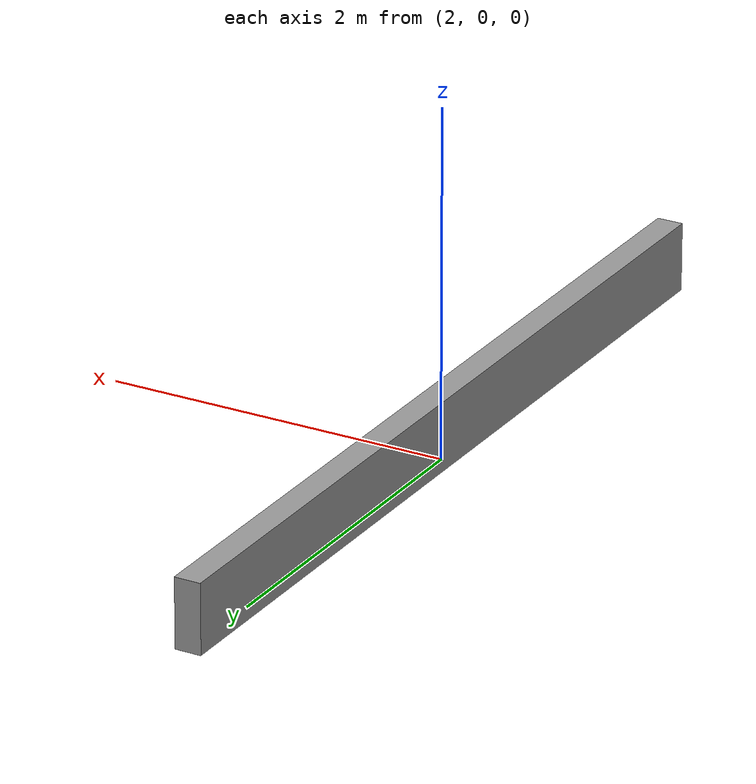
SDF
<?xml version='1.0'?>
<sdf version='1.6'>
  <model name='Untitled'>
    <pose frame=''>2 0 0 0 -0 0</pose>
    <link name='Wall_0'>
      <collision name='Wall_0_Collision'>
        <geometry>
          <box>
            <size>5.15 0.15 0.4</size>
          </box>
        </geometry>
        <pose frame=''>0 0 0.2 0 -0 0</pose>
      </collision>
      <visual name='Wall_0_Visual'>
        <pose frame=''>0 0 0.2 0 -0 0</pose>
        <geometry>
          <box>
            <size>5.15 0.15 0.4</size>
          </box>
        </geometry>
        <material>
          <script>
            <uri>file://media/materials/scripts/gazebo.material</uri>
            <name>Gazebo/Grey</name>
          </script>
          <ambient>1 1 1 1</ambient>
        </material>
        <meta>
          <layer>0</layer>
        </meta>
      </visual>
      <pose frame=''>0 0 0 0 -0 1.5708</pose>
    </link>
    <static>1</static>
  </model>
</sdf>
